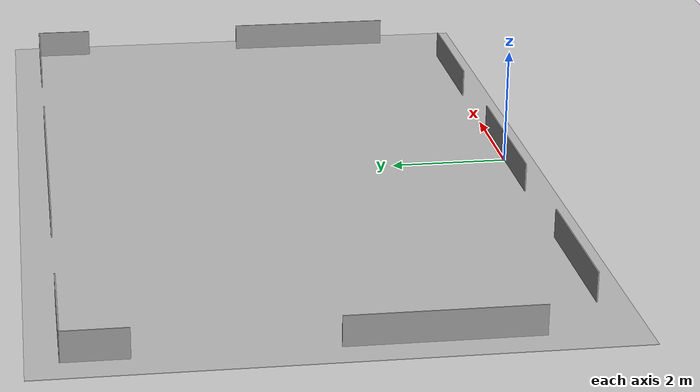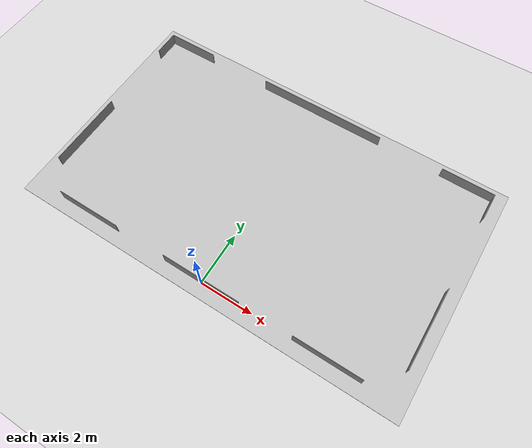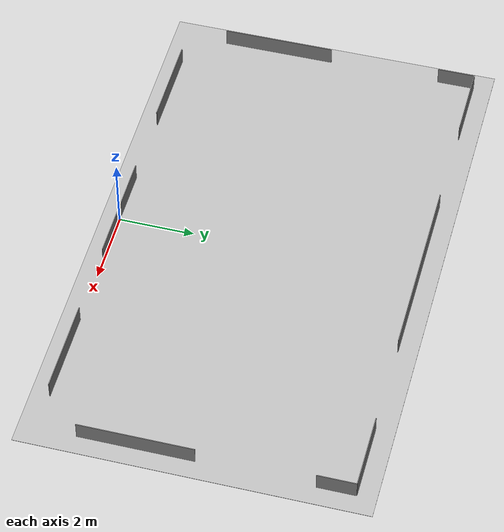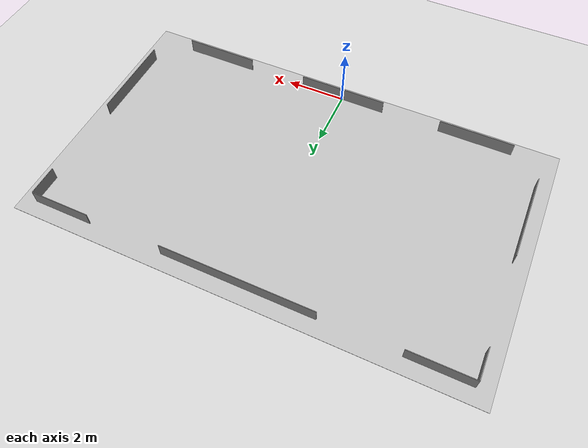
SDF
<sdf version="1.4">
 <world name="LLSF">
  <physics type="ode">
   <max_step_size>0.004</max_step_size>
   <real_time_factor>1</real_time_factor>
   <real_time_update_rate>250</real_time_update_rate>
  </physics>
  <scene><ambient>0.5 0.5 0.5 1.0</ambient><shadows>0</shadows></scene>
  <include><uri>model://ground_plane</uri></include>
  <include><uri>model://sun</uri></include>
  <include><uri>model://logistics_league_field_2017</uri></include>
  <light name="light" type="point">
   <cast_shadows>false</cast_shadows>
   <pose>-12 3 1 0 0 0</pose>
   <diffuse>127 127 127 255</diffuse>
   <specular>25 25 25 255</specular>
   <attenuation>
    <range>20.0</range>
    <linear>0.01</linear>
    <constant>0.7</constant>
    <quadratic>0.00</quadratic>
   </attenuation>
  </light>
  <plugin name="llsf_refbox_comm" filename="libllsf_refbox_comm.so"/>
  <plugin name="timesync" filename="libtimesync.so"/>
  <plugin name="mps_placement" filename="libmps_placement.so"/>
 </world>
</sdf>

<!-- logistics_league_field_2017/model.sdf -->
<sdf version="1.5">
  <model name="Logistics League Field 2017">
    <pose>0 4 0 0 0 0</pose>
    <static>true</static>
    <link name="field">
      <pose>0 0 0.01 0 0 0</pose>
      <collision name="collision">
        <geometry>
          <plane>
            <normal>0 0 1</normal>
            <size>15 9</size>
          </plane>
        </geometry>
        <surface>
          <friction>
            <ode>
              <mu>100</mu>
              <mu2>50</mu2>
            </ode>
          </friction>
        </surface>
      </collision>
      <visual name="carpet">
        <cast_shadows>false</cast_shadows>
        <geometry>
          <plane>
            <normal>0 0 1</normal>
            <size>15 9</size>
          </plane>
        </geometry>
        <material>
          <script>
            <uri>model://logistics_league_field_2017/materials/scripts/</uri>
            <uri>model://logistics_league_field_2017/materials/textures/</uri>
            <name>Logistics_League_Field/Image</name>
          </script>
        </material>
      </visual>
    </link>

    <link name="wall_bottom_middle_left_outer">
      <pose>-4.75 -4 0.25 0 0 1.570796327</pose>
      <visual name="wall_bottom_middle_left_outer-visual">
        <geometry>
          <box>
            <size>.02 2.5 .5</size>
          </box>
        </geometry>
        <cast_shadows>false</cast_shadows>
        <material>
          <script>
            <uri>file://media/materials/scripts/gazebo.material</uri>
            <name>Gazebo/Grey</name>
          </script>
        </material>
      </visual>
      <collision name="wall_bottom_middle_left_outer-collision">
        <geometry>
          <box>
            <size>.02 2.5 .5</size>
          </box>
        </geometry>
      </collision>
    </link>

    <link name="wall_bottom_middle">
      <pose>0 -4 0.25 0 0 1.570796327</pose>
      <visual name="wall_bottom_middle_right-visual">
        <geometry>
          <box>
            <size>.02 3 .5</size>
          </box>
        </geometry>
        <cast_shadows>false</cast_shadows>
        <material>
          <script>
            <uri>file://media/materials/scripts/gazebo.material</uri>
            <name>Gazebo/Grey</name>
          </script>
        </material>
      </visual>
      <collision name="wall_bottom_middle_right-collision">
        <geometry>
          <box>
            <size>.02 3 .5</size>
          </box>
        </geometry>
      </collision>
    </link>

    <link name="wall_bottom_middle_right_outer">
      <pose>4.75 -4 0.25 0 0 1.570796327</pose>
      <visual name="wall_bottom_middle_right_outer-visual">
        <geometry>
          <box>
            <size>.02 2.5 .5</size>
          </box>
        </geometry>
        <cast_shadows>false</cast_shadows>
        <material>
          <script>
            <uri>file://media/materials/scripts/gazebo.material</uri>
            <name>Gazebo/Grey</name>
          </script>
        </material>
      </visual>
      <collision name="wall_bottom_middle_right_outer-collision">
        <geometry>
          <box>
            <size>.02 2.5 .5</size>
          </box>
        </geometry>
      </collision>
    </link>

    <link name="wall_left_bottom">
      <pose>-7 -1.5 0.25 0 0 0</pose>
      <visual name="wall_left_bottom-visual">
        <geometry>
          <box>
            <size>.02 3 .5</size>
          </box>
        </geometry>
        <cast_shadows>false</cast_shadows>
        <material>
          <script>
            <uri>file://media/materials/scripts/gazebo.material</uri>
            <name>Gazebo/Grey</name>
          </script>
        </material>
      </visual>
      <collision name="wall_left_bottom-collision">
        <geometry>
          <box>
            <size>.02 3 .5</size>
          </box>
        </geometry>
      </collision>
    </link>

    <link name="wall_left_top">
      <pose>-7 3.5 0.25 0 0 0</pose>
      <visual name="wall_left_top-visual">
        <geometry>
          <box>
            <size>.02 1 .5</size>
          </box>
        </geometry>
        <cast_shadows>false</cast_shadows>
        <material>
          <script>
            <uri>file://media/materials/scripts/gazebo.material</uri>
            <name>Gazebo/Grey</name>
          </script>
        </material>
      </visual>
      <collision name="wall_left_top-collision">
        <geometry>
          <box>
            <size>.02 1 .5</size>
          </box>
        </geometry>
      </collision>
    </link>

    <link name="wall_right_bottom">
      <pose>7 -1.5 0.25 0 0 0</pose>
      <visual name="wall_right_bottom-visual">
        <geometry>
          <box>
            <size>.02 3 .5</size>
          </box>
        </geometry>
        <cast_shadows>false</cast_shadows>
        <material>
          <script>
            <uri>file://media/materials/scripts/gazebo.material</uri>
            <name>Gazebo/Grey</name>
          </script>
        </material>
      </visual>
      <collision name="wall_right_bottom-collision">
        <geometry>
          <box>
            <size>.02 3 .5</size>
          </box>
        </geometry>
      </collision>
    </link>

    <link name="wall_right_top">
      <pose>7 3.5 0.25 0 0 0</pose>
      <visual name="wall_right_top-visual">
        <geometry>
          <box>
            <size>.02 1 .5</size>
          </box>
        </geometry>
        <cast_shadows>false</cast_shadows>
        <material>
          <script>
            <uri>file://media/materials/scripts/gazebo.material</uri>
            <name>Gazebo/Grey</name>
          </script>
        </material>
      </visual>
      <collision name="wall_right_top-collision">
        <geometry>
          <box>
            <size>.02 1 .5</size>
          </box>
        </geometry>
      </collision>
    </link>

    <link name="wall_top_middle">
      <pose>0 4 0.25 0 0 1.570796327</pose>
      <visual name="wall_top_middle-visual">
        <geometry>
          <box>
            <size>.02 5 .5</size>
          </box>
        </geometry>
        <cast_shadows>false</cast_shadows>
        <material>
          <script>
            <uri>file://media/materials/scripts/gazebo.material</uri>
            <name>Gazebo/Grey</name>
          </script>
        </material>
      </visual>
      <collision name="wall_top_middle-collision">
        <geometry>
          <box>
            <size>.02 5 .5</size>
          </box>
        </geometry>
      </collision>
    </link>

    <link name="wall_top_left">
      <pose>-6 4 0.25 0 0 1.570796327</pose>
      <visual name="wall_top_left-visual">
        <geometry>
          <box>
            <size>.02 2 .5</size>
          </box>
        </geometry>
        <cast_shadows>false</cast_shadows>
        <material>
          <script>
            <uri>file://media/materials/scripts/gazebo.material</uri>
            <name>Gazebo/Grey</name>
          </script>
        </material>
      </visual>
      <collision name="wall_top_left-collision">
        <geometry>
          <box>
            <size>.02 2 .5</size>
          </box>
        </geometry>
      </collision>
    </link>

    <link name="wall_top_right">
      <pose>6 4 0.25 0 0 1.570796327</pose>
      <visual name="wall_top_right-visual">
        <geometry>
          <box>
             <size>.02 2 .5</size>
          </box>
        </geometry>
        <cast_shadows>false</cast_shadows>
        <material>
          <script>
            <uri>file://media/materials/scripts/gazebo.material</uri>
            <name>Gazebo/Grey</name>
          </script>
        </material>
      </visual>
      <collision name="wall_top_right-collision">
        <geometry>
          <box>
            <size>.02 2 .5</size>
          </box>
        </geometry>
      </collision>
    </link>

  </model>
</sdf>
